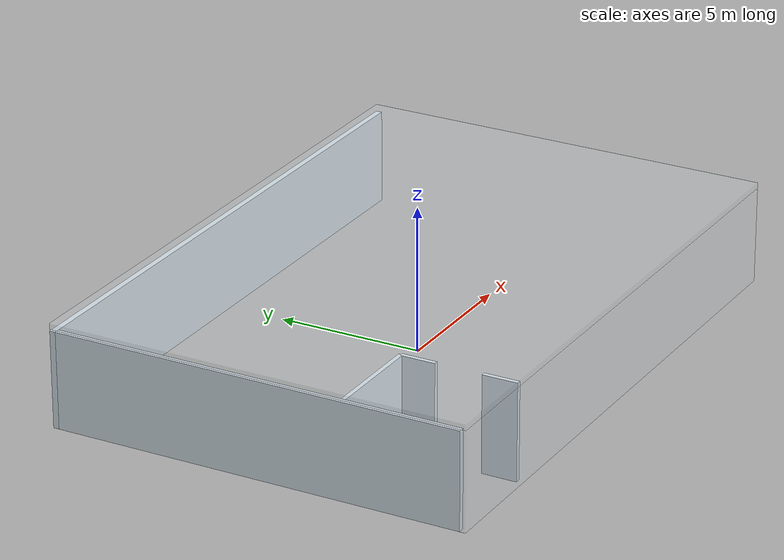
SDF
<sdf version="1.6">
 <world name="cleanroom">
  <model name="wall_north">
   <static>true</static>
   <link name="body">
    <collision name="body">
     <pose>0 7.1 1.65 0 0 0</pose>
     <geometry><box><size>20.4 0.2 3.3</size></box></geometry>
    </collision>
    <visual name="body">
     <pose>0 7.1 1.65 0 0 0</pose>
     <geometry><box><size>20.4 0.2 3.3</size></box></geometry>
     <material><ambient>0.85 0.9 0.93 1</ambient><diffuse>0.85 0.9 0.93 1</diffuse></material>
     <cast_shadows>false</cast_shadows>
    </visual>
   </link>
  </model>
  <model name="wall_south">
   <static>true</static>
   <link name="body">
    <collision name="body">
     <pose>0 -7.1 1.65 0 0 0</pose>
     <geometry><box><size>20.4 0.2 3.3</size></box></geometry>
    </collision>
    <visual name="body">
     <pose>0 -7.1 1.65 0 0 0</pose>
     <geometry><box><size>20.4 0.2 3.3</size></box></geometry>
     <material><ambient>0.85 0.9 0.93 1</ambient><diffuse>0.85 0.9 0.93 1</diffuse></material>
     <transparency>0.88</transparency>
     <cast_shadows>false</cast_shadows>
    </visual>
   </link>
  </model>
  <model name="wall_east">
   <static>true</static>
   <link name="body">
    <collision name="body">
     <pose>10.1 0 1.65 0 0 0</pose>
     <geometry><box><size>0.2 14 3.3</size></box></geometry>
    </collision>
    <visual name="body">
     <pose>10.1 0 1.65 0 0 0</pose>
     <geometry><box><size>0.2 14 3.3</size></box></geometry>
     <material><ambient>0.85 0.9 0.93 1</ambient><diffuse>0.85 0.9 0.93 1</diffuse></material>
     <transparency>0.88</transparency>
     <cast_shadows>false</cast_shadows>
    </visual>
   </link>
  </model>
  <model name="wall_west">
   <static>true</static>
   <link name="body">
    <collision name="body">
     <pose>-10.1 0 1.65 0 0 0</pose>
     <geometry><box><size>0.2 14 3.3</size></box></geometry>
    </collision>
    <visual name="body">
     <pose>-10.1 0 1.65 0 0 0</pose>
     <geometry><box><size>0.2 14 3.3</size></box></geometry>
     <material><ambient>0.85 0.9 0.93 1</ambient><diffuse>0.85 0.9 0.93 1</diffuse></material>
     <cast_shadows>false</cast_shadows>
    </visual>
   </link>
  </model>
  <model name="airlock_north">
   <static>true</static>
   <link name="body">
    <collision name="body">
     <pose>-8.25 -3 1.65 0 0 0</pose>
     <geometry><box><size>3.5 0.15 3.3</size></box></geometry>
    </collision>
    <visual name="body">
     <pose>-8.25 -3 1.65 0 0 0</pose>
     <geometry><box><size>3.5 0.15 3.3</size></box></geometry>
     <material><ambient>0.85 0.9 0.93 1</ambient><diffuse>0.85 0.9 0.93 1</diffuse></material>
     <cast_shadows>false</cast_shadows>
    </visual>
   </link>
  </model>
  <model name="airlock_door_south">
   <static>true</static>
   <link name="body">
    <collision name="body">
     <pose>-6.5 -6.4 1.65 0 0 0</pose>
     <geometry><box><size>0.15 1.2 3.3</size></box></geometry>
    </collision>
    <visual name="body">
     <pose>-6.5 -6.4 1.65 0 0 0</pose>
     <geometry><box><size>0.15 1.2 3.3</size></box></geometry>
     <material><ambient>0.85 0.9 0.93 1</ambient><diffuse>0.85 0.9 0.93 1</diffuse></material>
     <cast_shadows>false</cast_shadows>
    </visual>
   </link>
  </model>
  <model name="airlock_door_north">
   <static>true</static>
   <link name="body">
    <collision name="body">
     <pose>-6.5 -3.6 1.65 0 0 0</pose>
     <geometry><box><size>0.15 1.2 3.3</size></box></geometry>
    </collision>
    <visual name="body">
     <pose>-6.5 -3.6 1.65 0 0 0</pose>
     <geometry><box><size>0.15 1.2 3.3</size></box></geometry>
     <material><ambient>0.85 0.9 0.93 1</ambient><diffuse>0.85 0.9 0.93 1</diffuse></material>
     <cast_shadows>false</cast_shadows>
    </visual>
   </link>
  </model>
  <model name="ceiling_ffu_array">
   <static>true</static>
   <link name="body">
    <collision name="ceiling">
     <pose>0 0 3.45 0 0 0</pose>
     <geometry><box><size>20.4 14.4 0.2</size></box></geometry>
    </collision>
    <visual name="ceiling">
     <pose>0 0 3.45 0 0 0</pose>
     <geometry><box><size>20.4 14.4 0.2</size></box></geometry>
     <material><ambient>0.85 0.9 0.93 1</ambient><diffuse>0.85 0.9 0.93 1</diffuse></material>
     <transparency>0.98</transparency>
     <cast_shadows>false</cast_shadows>
    </visual>
    <visual name="ffu_frame_0_0">
     <pose>-9 -6 3.28 0 0 0</pose>
     <geometry><box><size>1.82 1.82 0.12</size></box></geometry>
     <material><ambient>0.57 0.66 0.7 1</ambient><diffuse>0.57 0.66 0.7 1</diffuse></material>
     <transparency>0.95</transparency>
     <cast_shadows>false</cast_shadows>
    </visual>
    <visual name="hepa_0_0">
     <pose>-9 -6 3.21 0 0 0</pose>
     <geometry><box><size>1.65 1.65 0.02</size></box></geometry>
     <material><ambient>0.85 0.9 0.93 1</ambient><diffuse>0.85 0.9 0.93 1</diffuse></material>
     <transparency>0.95</transparency>
     <cast_shadows>false</cast_shadows>
    </visual>
    <visual name="ffu_frame_0_1">
     <pose>-9 -4 3.28 0 0 0</pose>
     <geometry><box><size>1.82 1.82 0.12</size></box></geometry>
     <material><ambient>0.57 0.66 0.7 1</ambient><diffuse>0.57 0.66 0.7 1</diffuse></material>
     <transparency>0.95</transparency>
     <cast_shadows>false</cast_shadows>
    </visual>
    <visual name="hepa_0_1">
     <pose>-9 -4 3.21 0 0 0</pose>
     <geometry><box><size>1.65 1.65 0.02</size></box></geometry>
     <material><ambient>0.85 0.9 0.93 1</ambient><diffuse>0.85 0.9 0.93 1</diffuse></material>
     <transparency>0.95</transparency>
     <cast_shadows>false</cast_shadows>
    </visual>
    <visual name="ffu_frame_0_2">
     <pose>-9 -2 3.28 0 0 0</pose>
     <geometry><box><size>1.82 1.82 0.12</size></box></geometry>
     <material><ambient>0.57 0.66 0.7 1</ambient><diffuse>0.57 0.66 0.7 1</diffuse></material>
     <transparency>0.95</transparency>
     <cast_shadows>false</cast_shadows>
    </visual>
    <visual name="hepa_0_2">
     <pose>-9 -2 3.21 0 0 0</pose>
     <geometry><box><size>1.65 1.65 0.02</size></box></geometry>
     <material><ambient>0.85 0.9 0.93 1</ambient><diffuse>0.85 0.9 0.93 1</diffuse></material>
     <transparency>0.95</transparency>
     <cast_shadows>false</cast_shadows>
    </visual>
    <visual name="ffu_frame_0_3">
     <pose>-9 0 3.28 0 0 0</pose>
     <geometry><box><size>1.82 1.82 0.12</size></box></geometry>
     <material><ambient>0.57 0.66 0.7 1</ambient><diffuse>0.57 0.66 0.7 1</diffuse></material>
     <transparency>0.95</transparency>
     <cast_shadows>false</cast_shadows>
    </visual>
    <visual name="hepa_0_3">
     <pose>-9 0 3.21 0 0 0</pose>
     <geometry><box><size>1.65 1.65 0.02</size></box></geometry>
     <material><ambient>0.85 0.9 0.93 1</ambient><diffuse>0.85 0.9 0.93 1</diffuse></material>
     <transparency>0.95</transparency>
     <cast_shadows>false</cast_shadows>
    </visual>
    <visual name="ffu_frame_0_4">
     <pose>-9 2 3.28 0 0 0</pose>
     <geometry><box><size>1.82 1.82 0.12</size></box></geometry>
     <material><ambient>0.57 0.66 0.7 1</ambient><diffuse>0.57 0.66 0.7 1</diffuse></material>
     <transparency>0.95</transparency>
     <cast_shadows>false</cast_shadows>
    </visual>
    <visual name="hepa_0_4">
     <pose>-9 2 3.21 0 0 0</pose>
     <geometry><box><size>1.65 1.65 0.02</size></box></geometry>
     <material><ambient>0.85 0.9 0.93 1</ambient><diffuse>0.85 0.9 0.93 1</diffuse></material>
     <transparency>0.95</transparency>
     <cast_shadows>false</cast_shadows>
    </visual>
    <visual name="ffu_frame_0_5">
     <pose>-9 4 3.28 0 0 0</pose>
     <geometry><box><size>1.82 1.82 0.12</size></box></geometry>
     <material><ambient>0.57 0.66 0.7 1</ambient><diffuse>0.57 0.66 0.7 1</diffuse></material>
     <transparency>0.95</transparency>
     <cast_shadows>false</cast_shadows>
    </visual>
    <visual name="hepa_0_5">
     <pose>-9 4 3.21 0 0 0</pose>
     <geometry><box><size>1.65 1.65 0.02</size></box></geometry>
     <material><ambient>0.85 0.9 0.93 1</ambient><diffuse>0.85 0.9 0.93 1</diffuse></material>
     <transparency>0.95</transparency>
     <cast_shadows>false</cast_shadows>
    </visual>
    <visual name="ffu_frame_0_6">
     <pose>-9 6 3.28 0 0 0</pose>
     <geometry><box><size>1.82 1.82 0.12</size></box></geometry>
     <material><ambient>0.57 0.66 0.7 1</ambient><diffuse>0.57 0.66 0.7 1</diffuse></material>
     <transparency>0.95</transparency>
     <cast_shadows>false</cast_shadows>
    </visual>
    <visual name="hepa_0_6">
     <pose>-9 6 3.21 0 0 0</pose>
     <geometry><box><size>1.65 1.65 0.02</size></box></geometry>
     <material><ambient>0.85 0.9 0.93 1</ambient><diffuse>0.85 0.9 0.93 1</diffuse></material>
     <transparency>0.95</transparency>
     <cast_shadows>false</cast_shadows>
    </visual>
    <visual name="ffu_frame_1_0">
     <pose>-7 -6 3.28 0 0 0</pose>
     <geometry><box><size>1.82 1.82 0.12</size></box></geometry>
     <material><ambient>0.57 0.66 0.7 1</ambient><diffuse>0.57 0.66 0.7 1</diffuse></material>
     <transparency>0.95</transparency>
     <cast_shadows>false</cast_shadows>
    </visual>
    <visual name="hepa_1_0">
     <pose>-7 -6 3.21 0 0 0</pose>
     <geometry><box><size>1.65 1.65 0.02</size></box></geometry>
     <material><ambient>0.85 0.9 0.93 1</ambient><diffuse>0.85 0.9 0.93 1</diffuse></material>
     <transparency>0.95</transparency>
     <cast_shadows>false</cast_shadows>
    </visual>
    <visual name="ffu_frame_1_1">
     <pose>-7 -4 3.28 0 0 0</pose>
     <geometry><box><size>1.82 1.82 0.12</size></box></geometry>
     <material><ambient>0.57 0.66 0.7 1</ambient><diffuse>0.57 0.66 0.7 1</diffuse></material>
     <transparency>0.95</transparency>
     <cast_shadows>false</cast_shadows>
    </visual>
    <visual name="hepa_1_1">
     <pose>-7 -4 3.21 0 0 0</pose>
     <geometry><box><size>1.65 1.65 0.02</size></box></geometry>
     <material><ambient>0.85 0.9 0.93 1</ambient><diffuse>0.85 0.9 0.93 1</diffuse></material>
     <transparency>0.95</transparency>
     <cast_shadows>false</cast_shadows>
    </visual>
    <visual name="ffu_frame_1_2">
     <pose>-7 -2 3.28 0 0 0</pose>
     <geometry><box><size>1.82 1.82 0.12</size></box></geometry>
     <material><ambient>0.57 0.66 0.7 1</ambient><diffuse>0.57 0.66 0.7 1</diffuse></material>
     <transparency>0.95</transparency>
     <cast_shadows>false</cast_shadows>
    </visual>
    <visual name="hepa_1_2">
     <pose>-7 -2 3.21 0 0 0</pose>
     <geometry><box><size>1.65 1.65 0.02</size></box></geometry>
     <material><ambient>0.85 0.9 0.93 1</ambient><diffuse>0.85 0.9 0.93 1</diffuse></material>
     <transparency>0.95</transparency>
     <cast_shadows>false</cast_shadows>
    </visual>
    <visual name="ffu_frame_1_3">
     <pose>-7 0 3.28 0 0 0</pose>
     <geometry><box><size>1.82 1.82 0.12</size></box></geometry>
     <material><ambient>0.57 0.66 0.7 1</ambient><diffuse>0.57 0.66 0.7 1</diffuse></material>
     <transparency>0.95</transparency>
     <cast_shadows>false</cast_shadows>
    </visual>
    <visual name="hepa_1_3">
     <pose>-7 0 3.21 0 0 0</pose>
     <geometry><box><size>1.65 1.65 0.02</size></box></geometry>
     <material><ambient>0.85 0.9 0.93 1</ambient><diffuse>0.85 0.9 0.93 1</diffuse></material>
     <transparency>0.95</transparency>
     <cast_shadows>false</cast_shadows>
    </visual>
    <visual name="ffu_frame_1_4">
     <pose>-7 2 3.28 0 0 0</pose>
     <geometry><box><size>1.82 1.82 0.12</size></box></geometry>
     <material><ambient>0.57 0.66 0.7 1</ambient><diffuse>0.57 0.66 0.7 1</diffuse></material>
     <transparency>0.95</transparency>
     <cast_shadows>false</cast_shadows>
    </visual>
    <visual name="hepa_1_4">
     <pose>-7 2 3.21 0 0 0</pose>
     <geometry><box><size>1.65 1.65 0.02</size></box></geometry>
     <material><ambient>0.85 0.9 0.93 1</ambient><diffuse>0.85 0.9 0.93 1</diffuse></material>
     <transparency>0.95</transparency>
     <cast_shadows>false</cast_shadows>
    </visual>
    <visual name="ffu_frame_1_5">
     <pose>-7 4 3.28 0 0 0</pose>
     <geometry><box><size>1.82 1.82 0.12</size></box></geometry>
     <material><ambient>0.57 0.66 0.7 1</ambient><diffuse>0.57 0.66 0.7 1</diffuse></material>
     <transparency>0.95</transparency>
     <cast_shadows>false</cast_shadows>
    </visual>
    <visual name="hepa_1_5">
     <pose>-7 4 3.21 0 0 0</pose>
     <geometry><box><size>1.65 1.65 0.02</size></box></geometry>
     <material><ambient>0.85 0.9 0.93 1</ambient><diffuse>0.85 0.9 0.93 1</diffuse></material>
     <transparency>0.95</transparency>
     <cast_shadows>false</cast_shadows>
    </visual>
    <visual name="ffu_frame_1_6">
     <pose>-7 6 3.28 0 0 0</pose>
     <geometry><box><size>1.82 1.82 0.12</size></box></geometry>
     <material><ambient>0.57 0.66 0.7 1</ambient><diffuse>0.57 0.66 0.7 1</diffuse></material>
     <transparency>0.95</transparency>
     <cast_shadows>false</cast_shadows>
    </visual>
    <visual name="hepa_1_6">
     <pose>-7 6 3.21 0 0 0</pose>
     <geometry><box><size>1.65 1.65 0.02</size></box></geometry>
     <material><ambient>0.85 0.9 0.93 1</ambient><diffuse>0.85 0.9 0.93 1</diffuse></material>
     <transparency>0.95</transparency>
     <cast_shadows>false</cast_shadows>
    </visual>
    <visual name="ffu_frame_2_0">
     <pose>-5 -6 3.28 0 0 0</pose>
     <geometry><box><size>1.82 1.82 0.12</size></box></geometry>
     <material><ambient>0.57 0.66 0.7 1</ambient><diffuse>0.57 0.66 0.7 1</diffuse></material>
     <transparency>0.95</transparency>
     <cast_shadows>false</cast_shadows>
    </visual>
    <visual name="hepa_2_0">
     <pose>-5 -6 3.21 0 0 0</pose>
     <geometry><box><size>1.65 1.65 0.02</size></box></geometry>
     <material><ambient>0.85 0.9 0.93 1</ambient><diffuse>0.85 0.9 0.93 1</diffuse></material>
     <transparency>0.95</transparency>
     <cast_shadows>false</cast_shadows>
    </visual>
    <visual name="ffu_frame_2_1">
     <pose>-5 -4 3.28 0 0 0</pose>
     <geometry><box><size>1.82 1.82 0.12</size></box></geometry>
     <material><ambient>0.57 0.66 0.7 1</ambient><diffuse>0.57 0.66 0.7 1</diffuse></material>
     <transparency>0.95</transparency>
     <cast_shadows>false</cast_shadows>
    </visual>
    <visual name="hepa_2_1">
     <pose>-5 -4 3.21 0 0 0</pose>
     <geometry><box><size>1.65 1.65 0.02</size></box></geometry>
     <material><ambient>0.85 0.9 0.93 1</ambient><diffuse>0.85 0.9 0.93 1</diffuse></material>
     <transparency>0.95</transparency>
     <cast_shadows>false</cast_shadows>
    </visual>
    <visual name="ffu_frame_2_2">
     <pose>-5 -2 3.28 0 0 0</pose>
     <geometry><box><size>1.82 1.82 0.12</size></box></geometry>
     <material><ambient>0.57 0.66 0.7 1</ambient><diffuse>0.57 0.66 0.7 1</diffuse></material>
     <transparency>0.95</transparency>
     <cast_shadows>false</cast_shadows>
    </visual>
    <visual name="hepa_2_2">
     <pose>-5 -2 3.21 0 0 0</pose>
     <geometry><box><size>1.65 1.65 0.02</size></box></geometry>
     <material><ambient>0.85 0.9 0.93 1</ambient><diffuse>0.85 0.9 0.93 1</diffuse></material>
     <transparency>0.95</transparency>
     <cast_shadows>false</cast_shadows>
    </visual>
    <visual name="ffu_frame_2_3">
     <pose>-5 0 3.28 0 0 0</pose>
     <geometry><box><size>1.82 1.82 0.12</size></box></geometry>
     <material><ambient>0.57 0.66 0.7 1</ambient><diffuse>0.57 0.66 0.7 1</diffuse></material>
     <transparency>0.95</transparency>
     <cast_shadows>false</cast_shadows>
    </visual>
    <visual name="hepa_2_3">
     <pose>-5 0 3.21 0 0 0</pose>
     <geometry><box><size>1.65 1.65 0.02</size></box></geometry>
     <material><ambient>0.85 0.9 0.93 1</ambient><diffuse>0.85 0.9 0.93 1</diffuse></material>
     <transparency>0.95</transparency>
     <cast_shadows>false</cast_shadows>
    </visual>
    <visual name="ffu_frame_2_4">
     <pose>-5 2 3.28 0 0 0</pose>
     <geometry><box><size>1.82 1.82 0.12</size></box></geometry>
     <material><ambient>0.57 0.66 0.7 1</ambient><diffuse>0.57 0.66 0.7 1</diffuse></material>
     <transparency>0.95</transparency>
     <cast_shadows>false</cast_shadows>
    </visual>
    <visual name="hepa_2_4">
     <pose>-5 2 3.21 0 0 0</pose>
     <geometry><box><size>1.65 1.65 0.02</size></box></geometry>
     <material><ambient>0.85 0.9 0.93 1</ambient><diffuse>0.85 0.9 0.93 1</diffuse></material>
     <transparency>0.95</transparency>
     <cast_shadows>false</cast_shadows>
    </visual>
    <visual name="ffu_frame_2_5">
     <pose>-5 4 3.28 0 0 0</pose>
     <geometry><box><size>1.82 1.82 0.12</size></box></geometry>
     <material><ambient>0.57 0.66 0.7 1</ambient><diffuse>0.57 0.66 0.7 1</diffuse></material>
     <transparency>0.95</transparency>
     <cast_shadows>false</cast_shadows>
    </visual>
    <visual name="hepa_2_5">
     <pose>-5 4 3.21 0 0 0</pose>
     <geometry><box><size>1.65 1.65 0.02</size></box></geometry>
     <material><ambient>0.85 0.9 0.93 1</ambient><diffuse>0.85 0.9 0.93 1</diffuse></material>
     <transparency>0.95</transparency>
     <cast_shadows>false</cast_shadows>
    </visual>
    <visual name="ffu_frame_2_6">
     <pose>-5 6 3.28 0 0 0</pose>
     <geometry><box><size>1.82 1.82 0.12</size></box></geometry>
     <material><ambient>0.57 0.66 0.7 1</ambient><diffuse>0.57 0.66 0.7 1</diffuse></material>
     <transparency>0.95</transparency>
     <cast_shadows>false</cast_shadows>
    </visual>
    <visual name="hepa_2_6">
     <pose>-5 6 3.21 0 0 0</pose>
     <geometry><box><size>1.65 1.65 0.02</size></box></geometry>
     <material><ambient>0.85 0.9 0.93 1</ambient><diffuse>0.85 0.9 0.93 1</diffuse></material>
     <transparency>0.95</transparency>
     <cast_shadows>false</cast_shadows>
    </visual>
    <visual name="ffu_frame_3_0">
     <pose>-3 -6 3.28 0 0 0</pose>
     <geometry><box><size>1.82 1.82 0.12</size></box></geometry>
     <material><ambient>0.57 0.66 0.7 1</ambient><diffuse>0.57 0.66 0.7 1</diffuse></material>
     <transparency>0.95</transparency>
     <cast_shadows>false</cast_shadows>
    </visual>
    <visual name="hepa_3_0">
     <pose>-3 -6 3.21 0 0 0</pose>
     <geometry><box><size>1.65 1.65 0.02</size></box></geometry>
     <material><ambient>0.85 0.9 0.93 1</ambient><diffuse>0.85 0.9 0.93 1</diffuse></material>
     <transparency>0.95</transparency>
     <cast_shadows>false</cast_shadows>
    </visual>
    <visual name="ffu_frame_3_1">
     <pose>-3 -4 3.28 0 0 0</pose>
     <geometry><box><size>1.82 1.82 0.12</size></box></geometry>
     <material><ambient>0.57 0.66 0.7 1</ambient><diffuse>0.57 0.66 0.7 1</diffuse></material>
     <transparency>0.95</transparency>
     <cast_shadows>false</cast_shadows>
    </visual>
    <visual name="hepa_3_1">
     <pose>-3 -4 3.21 0 0 0</pose>
     <geometry><box><size>1.65 1.65 0.02</size></box></geometry>
     <material><ambient>0.85 0.9 0.93 1</ambient><diffuse>0.85 0.9 0.93 1</diffuse></material>
     <transparency>0.95</transparency>
     <cast_shadows>false</cast_shadows>
    </visual>
    <visual name="ffu_frame_3_2">
     <pose>-3 -2 3.28 0 0 0</pose>
     <geometry><box><size>1.82 1.82 0.12</size></box></geometry>
     <material><ambient>0.57 0.66 0.7 1</ambient><diffuse>0.57 0.66 0.7 1</diffuse></material>
     <transparency>0.95</transparency>
     <cast_shadows>false</cast_shadows>
    </visual>
    <visual name="hepa_3_2">
     <pose>-3 -2 3.21 0 0 0</pose>
     <geometry><box><size>1.65 1.65 0.02</size></box></geometry>
     <material><ambient>0.85 0.9 0.93 1</ambient><diffuse>0.85 0.9 0.93 1</diffuse></material>
     <transparency>0.95</transparency>
     <cast_shadows>false</cast_shadows>
    </visual>
    <visual name="ffu_frame_3_3">
     <pose>-3 0 3.28 0 0 0</pose>
     <geometry><box><size>1.82 1.82 0.12</size></box></geometry>
     <material><ambient>0.57 0.66 0.7 1</ambient><diffuse>0.57 0.66 0.7 1</diffuse></material>
     <transparency>0.95</transparency>
     <cast_shadows>false</cast_shadows>
    </visual>
    <visual name="hepa_3_3">
     <pose>-3 0 3.21 0 0 0</pose>
     <geometry><box><size>1.65 1.65 0.02</size></box></geometry>
     <material><ambient>0.85 0.9 0.93 1</ambient><diffuse>0.85 0.9 0.93 1</diffuse></material>
     <transparency>0.95</transparency>
     <cast_shadows>false</cast_shadows>
    </visual>
    <visual name="ffu_frame_3_4">
     <pose>-3 2 3.28 0 0 0</pose>
     <geometry><box><size>1.82 1.82 0.12</size></box></geometry>
     <material><ambient>0.57 0.66 0.7 1</ambient><diffuse>0.57 0.66 0.7 1</diffuse></material>
     <transparency>0.95</transparency>
     <cast_shadows>false</cast_shadows>
    </visual>
    <visual name="hepa_3_4">
     <pose>-3 2 3.21 0 0 0</pose>
     <geometry><box><size>1.65 1.65 0.02</size></box></geometry>
     <material><ambient>0.85 0.9 0.93 1</ambient><diffuse>0.85 0.9 0.93 1</diffuse></material>
     <transparency>0.95</transparency>
     <cast_shadows>false</cast_shadows>
    </visual>
    <visual name="ffu_frame_3_5">
     <pose>-3 4 3.28 0 0 0</pose>
     <geometry><box><size>1.82 1.82 0.12</size></box></geometry>
     <material><ambient>0.57 0.66 0.7 1</ambient><diffuse>0.57 0.66 0.7 1</diffuse></material>
     <transparency>0.95</transparency>
     <cast_shadows>false</cast_shadows>
    </visual>
    <visual name="hepa_3_5">
     <pose>-3 4 3.21 0 0 0</pose>
     <geometry><box><size>1.65 1.65 0.02</size></box></geometry>
     <material><ambient>0.85 0.9 0.93 1</ambient><diffuse>0.85 0.9 0.93 1</diffuse></material>
     <transparency>0.95</transparency>
     <cast_shadows>false</cast_shadows>
    </visual>
    <visual name="ffu_frame_3_6">
     <pose>-3 6 3.28 0 0 0</pose>
     <geometry><box><size>1.82 1.82 0.12</size></box></geometry>
     <material><ambient>0.57 0.66 0.7 1</ambient><diffuse>0.57 0.66 0.7 1</diffuse></material>
     <transparency>0.95</transparency>
     <cast_shadows>false</cast_shadows>
    </visual>
    <visual name="hepa_3_6">
     <pose>-3 6 3.21 0 0 0</pose>
     <geometry><box><size>1.65 1.65 0.02</size></box></geometry>
     <material><ambient>0.85 0.9 0.93 1</ambient><diffuse>0.85 0.9 0.93 1</diffuse></material>
     <transparency>0.95</transparency>
     <cast_shadows>false</cast_shadows>
    </visual>
    <visual name="ffu_frame_4_0">
     <pose>-1 -6 3.28 0 0 0</pose>
     <geometry><box><size>1.82 1.82 0.12</size></box></geometry>
     <material><ambient>0.57 0.66 0.7 1</ambient><diffuse>0.57 0.66 0.7 1</diffuse></material>
     <transparency>0.95</transparency>
     <cast_shadows>false</cast_shadows>
    </visual>
    <visual name="hepa_4_0">
     <pose>-1 -6 3.21 0 0 0</pose>
     <geometry><box><size>1.65 1.65 0.02</size></box></geometry>
     <material><ambient>0.85 0.9 0.93 1</ambient><diffuse>0.85 0.9 0.93 1</diffuse></material>
     <transparency>0.95</transparency>
     <cast_shadows>false</cast_shadows>
    </visual>
    <visual name="ffu_frame_4_1">
     <pose>-1 -4 3.28 0 0 0</pose>
     <geometry><box><size>1.82 1.82 0.12</size></box></geometry>
     <material><ambient>0.57 0.66 0.7 1</ambient><diffuse>0.57 0.66 0.7 1</diffuse></material>
     <transparency>0.95</transparency>
     <cast_shadows>false</cast_shadows>
    </visual>
    <visual name="hepa_4_1">
     <pose>-1 -4 3.21 0 0 0</pose>
     <geometry><box><size>1.65 1.65 0.02</size></box></geometry>
     <material><ambient>0.85 0.9 0.93 1</ambient><diffuse>0.85 0.9 0.93 1</diffuse></material>
     <transparency>0.95</transparency>
     <cast_shadows>false</cast_shadows>
    </visual>
    <visual name="ffu_frame_4_2">
     <pose>-1 -2 3.28 0 0 0</pose>
     <geometry><box><size>1.82 1.82 0.12</size></box></geometry>
     <material><ambient>0.57 0.66 0.7 1</ambient><diffuse>0.57 0.66 0.7 1</diffuse></material>
     <transparency>0.95</transparency>
     <cast_shadows>false</cast_shadows>
    </visual>
    <visual name="hepa_4_2">
     <pose>-1 -2 3.21 0 0 0</pose>
     <geometry><box><size>1.65 1.65 0.02</size></box></geometry>
     <material><ambient>0.85 0.9 0.93 1</ambient><diffuse>0.85 0.9 0.93 1</diffuse></material>
     <transparency>0.95</transparency>
     <cast_shadows>false</cast_shadows>
    </visual>
    <visual name="ffu_frame_4_3">
     <pose>-1 0 3.28 0 0 0</pose>
     <geometry><box><size>1.82 1.82 0.12</size></box></geometry>
     <material><ambient>0.57 0.66 0.7 1</ambient><diffuse>0.57 0.66 0.7 1</diffuse></material>
     <transparency>0.95</transparency>
     <cast_shadows>false</cast_shadows>
    </visual>
    <visual name="hepa_4_3">
     <pose>-1 0 3.21 0 0 0</pose>
     <geometry><box><size>1.65 1.65 0.02</size></box></geometry>
     <material><ambient>0.85 0.9 0.93 1</ambient><diffuse>0.85 0.9 0.93 1</diffuse></material>
     <transparency>0.95</transparency>
     <cast_shadows>false</cast_shadows>
    </visual>
    <visual name="ffu_frame_4_4">
     <pose>-1 2 3.28 0 0 0</pose>
     <geometry><box><size>1.82 1.82 0.12</size></box></geometry>
     <material><ambient>0.57 0.66 0.7 1</ambient><diffuse>0.57 0.66 0.7 1</diffuse></material>
     <transparency>0.95</transparency>
     <cast_shadows>false</cast_shadows>
    </visual>
    <visual name="hepa_4_4">
     <pose>-1 2 3.21 0 0 0</pose>
     <geometry><box><size>1.65 1.65 0.02</size></box></geometry>
     <material><ambient>0.85 0.9 0.93 1</ambient><diffuse>0.85 0.9 0.93 1</diffuse></material>
     <transparency>0.95</transparency>
     <cast_shadows>false</cast_shadows>
    </visual>
    <visual name="ffu_frame_4_5">
     <pose>-1 4 3.28 0 0 0</pose>
     <geometry><box><size>1.82 1.82 0.12</size></box></geometry>
     <material><ambient>0.57 0.66 0.7 1</ambient><diffuse>0.57 0.66 0.7 1</diffuse></material>
     <transparency>0.95</transparency>
     <cast_shadows>false</cast_shadows>
    </visual>
    <visual name="hepa_4_5">
     <pose>-1 4 3.21 0 0 0</pose>
     <geometry><box><size>1.65 1.65 0.02</size></box></geometry>
     <material><ambient>0.85 0.9 0.93 1</ambient><diffuse>0.85 0.9 0.93 1</diffuse></material>
     <transparency>0.95</transparency>
     <cast_shadows>false</cast_shadows>
    </visual>
    <visual name="ffu_frame_4_6">
     <pose>-1 6 3.28 0 0 0</pose>
     <geometry><box><size>1.82 1.82 0.12</size></box></geometry>
     <material><ambient>0.57 0.66 0.7 1</ambient><diffuse>0.57 0.66 0.7 1</diffuse></material>
     <transparency>0.95</transparency>
     <cast_shadows>false</cast_shadows>
    </visual>
    <visual name="hepa_4_6">
     <pose>-1 6 3.21 0 0 0</pose>
     <geometry><box><size>1.65 1.65 0.02</size></box></geometry>
     <material><ambient>0.85 0.9 0.93 1</ambient><diffuse>0.85 0.9 0.93 1</diffuse></material>
     <transparency>0.95</transparency>
     <cast_shadows>false</cast_shadows>
    </visual>
    <visual name="ffu_frame_5_0">
     <pose>1 -6 3.28 0 0 0</pose>
     <geometry><box><size>1.82 1.82 0.12</size></box></geometry>
     <material><ambient>0.57 0.66 0.7 1</ambient><diffuse>0.57 0.66 0.7 1</diffuse></material>
     <transparency>0.95</transparency>
     <cast_shadows>false</cast_shadows>
    </visual>
    <visual name="hepa_5_0">
     <pose>1 -6 3.21 0 0 0</pose>
     <geometry><box><size>1.65 1.65 0.02</size></box></geometry>
     <material><ambient>0.85 0.9 0.93 1</ambient><diffuse>0.85 0.9 0.93 1</diffuse></material>
     <transparency>0.95</transparency>
     <cast_shadows>false</cast_shadows>
    </visual>
    <visual name="ffu_frame_5_1">
     <pose>1 -4 3.28 0 0 0</pose>
     <geometry><box><size>1.82 1.82 0.12</size></box></geometry>
     <material><ambient>0.57 0.66 0.7 1</ambient><diffuse>0.57 0.66 0.7 1</diffuse></material>
     <transparency>0.95</transparency>
     <cast_shadows>false</cast_shadows>
    </visual>
    <visual name="hepa_5_1">
     <pose>1 -4 3.21 0 0 0</pose>
     <geometry><box><size>1.65 1.65 0.02</size></box></geometry>
     <material><ambient>0.85 0.9 0.93 1</ambient><diffuse>0.85 0.9 0.93 1</diffuse></material>
     <transparency>0.95</transparency>
     <cast_shadows>false</cast_shadows>
    </visual>
    <visual name="ffu_frame_5_2">
     <pose>1 -2 3.28 0 0 0</pose>
     <geometry><box><size>1.82 1.82 0.12</size></box></geometry>
     <material><ambient>0.57 0.66 0.7 1</ambient><diffuse>0.57 0.66 0.7 1</diffuse></material>
     <transparency>0.95</transparency>
     <cast_shadows>false</cast_shadows>
    </visual>
    <visual name="hepa_5_2">
     <pose>1 -2 3.21 0 0 0</pose>
     <geometry><box><size>1.65 1.65 0.02</size></box></geometry>
     <material><ambient>0.85 0.9 0.93 1</ambient><diffuse>0.85 0.9 0.93 1</diffuse></material>
     <transparency>0.95</transparency>
     <cast_shadows>false</cast_shadows>
    </visual>
    <visual name="ffu_frame_5_3">
     <pose>1 0 3.28 0 0 0</pose>
     <geometry><box><size>1.82 1.82 0.12</size></box></geometry>
     <material><ambient>0.57 0.66 0.7 1</ambient><diffuse>0.57 0.66 0.7 1</diffuse></material>
     <transparency>0.95</transparency>
     <cast_shadows>false</cast_shadows>
    </visual>
    <visual name="hepa_5_3">
     <pose>1 0 3.21 0 0 0</pose>
     <geometry><box><size>1.65 1.65 0.02</size></box></geometry>
     <material><ambient>0.85 0.9 0.93 1</ambient><diffuse>0.85 0.9 0.93 1</diffuse></material>
     <transparency>0.95</transparency>
     <cast_shadows>false</cast_shadows>
    </visual>
    <visual name="ffu_frame_5_4">
     <pose>1 2 3.28 0 0 0</pose>
     <geometry><box><size>1.82 1.82 0.12</size></box></geometry>
     <material><ambient>0.57 0.66 0.7 1</ambient><diffuse>0.57 0.66 0.7 1</diffuse></material>
     <transparency>0.95</transparency>
     <cast_shadows>false</cast_shadows>
    </visual>
    <visual name="hepa_5_4">
     <pose>1 2 3.21 0 0 0</pose>
     <geometry><box><size>1.65 1.65 0.02</size></box></geometry>
     <material><ambient>0.85 0.9 0.93 1</ambient><diffuse>0.85 0.9 0.93 1</diffuse></material>
     <transparency>0.95</transparency>
     <cast_shadows>false</cast_shadows>
    </visual>
    <visual name="ffu_frame_5_5">
     <pose>1 4 3.28 0 0 0</pose>
     <geometry><box><size>1.82 1.82 0.12</size></box></geometry>
     <material><ambient>0.57 0.66 0.7 1</ambient><diffuse>0.57 0.66 0.7 1</diffuse></material>
     <transparency>0.95</transparency>
     <cast_shadows>false</cast_shadows>
    </visual>
    <visual name="hepa_5_5">
     <pose>1 4 3.21 0 0 0</pose>
     <geometry><box><size>1.65 1.65 0.02</size></box></geometry>
     <material><ambient>0.85 0.9 0.93 1</ambient><diffuse>0.85 0.9 0.93 1</diffuse></material>
     <transparency>0.95</transparency>
     <cast_shadows>false</cast_shadows>
    </visual>
    <visual name="ffu_frame_5_6">
     <pose>1 6 3.28 0 0 0</pose>
     <geometry><box><size>1.82 1.82 0.12</size></box></geometry>
     <material><ambient>0.57 0.66 0.7 1</ambient><diffuse>0.57 0.66 0.7 1</diffuse></material>
     <transparency>0.95</transparency>
     <cast_shadows>false</cast_shadows>
    </visual>
    <visual name="hepa_5_6">
     <pose>1 6 3.21 0 0 0</pose>
     <geometry><box><size>1.65 1.65 0.02</size></box></geometry>
     <material><ambient>0.85 0.9 0.93 1</ambient><diffuse>0.85 0.9 0.93 1</diffuse></material>
     <transparency>0.95</transparency>
     <cast_shadows>false</cast_shadows>
    </visual>
    <visual name="ffu_frame_6_0">
     <pose>3 -6 3.28 0 0 0</pose>
     <geometry><box><size>1.82 1.82 0.12</size></box></geometry>
     <material><ambient>0.57 0.66 0.7 1</ambient><diffuse>0.57 0.66 0.7 1</diffuse></material>
     <transparency>0.95</transparency>
     <cast_shadows>false</cast_shadows>
    </visual>
    <visual name="hepa_6_0">
     <pose>3 -6 3.21 0 0 0</pose>
     <geometry><box><size>1.65 1.65 0.02</size></box></geometry>
     <material><ambient>0.85 0.9 0.93 1</ambient><diffuse>0.85 0.9 0.93 1</diffuse></material>
     <transparency>0.95</transparency>
     <cast_shadows>false</cast_shadows>
    </visual>
    <visual name="ffu_frame_6_1">
     <pose>3 -4 3.28 0 0 0</pose>
     <geometry><box><size>1.82 1.82 0.12</size></box></geometry>
     <material><ambient>0.57 0.66 0.7 1</ambient><diffuse>0.57 0.66 0.7 1</diffuse></material>
     <transparency>0.95</transparency>
     <cast_shadows>false</cast_shadows>
    </visual>
    <visual name="hepa_6_1">
     <pose>3 -4 3.21 0 0 0</pose>
     <geometry><box><size>1.65 1.65 0.02</size></box></geometry>
     <material><ambient>0.85 0.9 0.93 1</ambient><diffuse>0.85 0.9 0.93 1</diffuse></material>
     <transparency>0.95</transparency>
     <cast_shadows>false</cast_shadows>
    </visual>
    <visual name="ffu_frame_6_2">
     <pose>3 -2 3.28 0 0 0</pose>
     <geometry><box><size>1.82 1.82 0.12</size></box></geometry>
     <material><ambient>0.57 0.66 0.7 1</ambient><diffuse>0.57 0.66 0.7 1</diffuse></material>
     <transparency>0.95</transparency>
     <cast_shadows>false</cast_shadows>
    </visual>
    <visual name="hepa_6_2">
     <pose>3 -2 3.21 0 0 0</pose>
     <geometry><box><size>1.65 1.65 0.02</size></box></geometry>
     <material><ambient>0.85 0.9 0.93 1</ambient><diffuse>0.85 0.9 0.93 1</diffuse></material>
     <transparency>0.95</transparency>
     <cast_shadows>false</cast_shadows>
    </visual>
    <visual name="ffu_frame_6_3">
     <pose>3 0 3.28 0 0 0</pose>
     <geometry><box><size>1.82 1.82 0.12</size></box></geometry>
     <material><ambient>0.57 0.66 0.7 1</ambient><diffuse>0.57 0.66 0.7 1</diffuse></material>
     <transparency>0.95</transparency>
     <cast_shadows>false</cast_shadows>
    </visual>
    <visual name="hepa_6_3">
     <pose>3 0 3.21 0 0 0</pose>
     <geometry><box><size>1.65 1.65 0.02</size></box></geometry>
     <material><ambient>0.85 0.9 0.93 1</ambient><diffuse>0.85 0.9 0.93 1</diffuse></material>
     <transparency>0.95</transparency>
     <cast_shadows>false</cast_shadows>
    </visual>
    <visual name="ffu_frame_6_4">
     <pose>3 2 3.28 0 0 0</pose>
     <geometry><box><size>1.82 1.82 0.12</size></box></geometry>
     <material><ambient>0.57 0.66 0.7 1</ambient><diffuse>0.57 0.66 0.7 1</diffuse></material>
     <transparency>0.95</transparency>
     <cast_shadows>false</cast_shadows>
    </visual>
    <visual name="hepa_6_4">
     <pose>3 2 3.21 0 0 0</pose>
     <geometry><box><size>1.65 1.65 0.02</size></box></geometry>
     <material><ambient>0.85 0.9 0.93 1</ambient><diffuse>0.85 0.9 0.93 1</diffuse></material>
     <transparency>0.95</transparency>
     <cast_shadows>false</cast_shadows>
    </visual>
    <visual name="ffu_frame_6_5">
     <pose>3 4 3.28 0 0 0</pose>
     <geometry><box><size>1.82 1.82 0.12</size></box></geometry>
     <material><ambient>0.57 0.66 0.7 1</ambient><diffuse>0.57 0.66 0.7 1</diffuse></material>
     <transparency>0.95</transparency>
     <cast_shadows>false</cast_shadows>
    </visual>
    <visual name="hepa_6_5">
     <pose>3 4 3.21 0 0 0</pose>
     <geometry><box><size>1.65 1.65 0.02</size></box></geometry>
     <material><ambient>0.85 0.9 0.93 1</ambient><diffuse>0.85 0.9 0.93 1</diffuse></material>
     <transparency>0.95</transparency>
     <cast_shadows>false</cast_shadows>
    </visual>
    <visual name="ffu_frame_6_6">
     <pose>3 6 3.28 0 0 0</pose>
     <geometry><box><size>1.82 1.82 0.12</size></box></geometry>
     <material><ambient>0.57 0.66 0.7 1</ambient><diffuse>0.57 0.66 0.7 1</diffuse></material>
     <transparency>0.95</transparency>
     <cast_shadows>false</cast_shadows>
    </visual>
    <visual name="hepa_6_6">
     <pose>3 6 3.21 0 0 0</pose>
     <geometry><box><size>1.65 1.65 0.02</size></box></geometry>
     <material><ambient>0.85 0.9 0.93 1</ambient><diffuse>0.85 0.9 0.93 1</diffuse></material>
     <transparency>0.95</transparency>
     <cast_shadows>false</cast_shadows>
    </visual>
    <visual name="ffu_frame_7_0">
     <pose>5 -6 3.28 0 0 0</pose>
     <geometry><box><size>1.82 1.82 0.12</size></box></geometry>
     <material><ambient>0.57 0.66 0.7 1</ambient><diffuse>0.57 0.66 0.7 1</diffuse></material>
     <transparency>0.95</transparency>
     <cast_shadows>false</cast_shadows>
    </visual>
    <visual name="hepa_7_0">
     <pose>5 -6 3.21 0 0 0</pose>
     <geometry><box><size>1.65 1.65 0.02</size></box></geometry>
     <material><ambient>0.85 0.9 0.93 1</ambient><diffuse>0.85 0.9 0.93 1</diffuse></material>
     <transparency>0.95</transparency>
     <cast_shadows>false</cast_shadows>
    </visual>
    <visual name="ffu_frame_7_1">
     <pose>5 -4 3.28 0 0 0</pose>
     <geometry><box><size>1.82 1.82 0.12</size></box></geometry>
     <material><ambient>0.57 0.66 0.7 1</ambient><diffuse>0.57 0.66 0.7 1</diffuse></material>
     <transparency>0.95</transparency>
     <cast_shadows>false</cast_shadows>
    </visual>
    <visual name="hepa_7_1">
     <pose>5 -4 3.21 0 0 0</pose>
     <geometry><box><size>1.65 1.65 0.02</size></box></geometry>
     <material><ambient>0.85 0.9 0.93 1</ambient><diffuse>0.85 0.9 0.93 1</diffuse></material>
     <transparency>0.95</transparency>
     <cast_shadows>false</cast_shadows>
    </visual>
    <visual name="ffu_frame_7_2">
     <pose>5 -2 3.28 0 0 0</pose>
     <geometry><box><size>1.82 1.82 0.12</size></box></geometry>
     <material><ambient>0.57 0.66 0.7 1</ambient><diffuse>0.57 0.66 0.7 1</diffuse></material>
     <transparency>0.95</transparency>
     <cast_shadows>false</cast_shadows>
    </visual>
    <visual name="hepa_7_2">
     <pose>5 -2 3.21 0 0 0</pose>
     <geometry><box><size>1.65 1.65 0.02</size></box></geometry>
     <material><ambient>0.85 0.9 0.93 1</ambient><diffuse>0.85 0.9 0.93 1</diffuse></material>
     <transparency>0.95</transparency>
     <cast_shadows>false</cast_shadows>
    </visual>
    <visual name="ffu_frame_7_3">
     <pose>5 0 3.28 0 0 0</pose>
     <geometry><box><size>1.82 1.82 0.12</size></box></geometry>
     <material><ambient>0.57 0.66 0.7 1</ambient><diffuse>0.57 0.66 0.7 1</diffuse></material>
     <transparency>0.95</transparency>
     <cast_shadows>false</cast_shadows>
    </visual>
    <visual name="hepa_7_3">
     <pose>5 0 3.21 0 0 0</pose>
     <geometry><box><size>1.65 1.65 0.02</size></box></geometry>
     <material><ambient>0.85 0.9 0.93 1</ambient><diffuse>0.85 0.9 0.93 1</diffuse></material>
     <transparency>0.95</transparency>
     <cast_shadows>false</cast_shadows>
    </visual>
    <visual name="ffu_frame_7_4">
     <pose>5 2 3.28 0 0 0</pose>
     <geometry><box><size>1.82 1.82 0.12</size></box></geometry>
     <material><ambient>0.57 0.66 0.7 1</ambient><diffuse>0.57 0.66 0.7 1</diffuse></material>
     <transparency>0.95</transparency>
     <cast_shadows>false</cast_shadows>
    </visual>
    <visual name="hepa_7_4">
     <pose>5 2 3.21 0 0 0</pose>
     <geometry><box><size>1.65 1.65 0.02</size></box></geometry>
     <material><ambient>0.85 0.9 0.93 1</ambient><diffuse>0.85 0.9 0.93 1</diffuse></material>
     <transparency>0.95</transparency>
     <cast_shadows>false</cast_shadows>
    </visual>
    <visual name="ffu_frame_7_5">
     <pose>5 4 3.28 0 0 0</pose>
     <geometry><box><size>1.82 1.82 0.12</size></box></geometry>
     <material><ambient>0.57 0.66 0.7 1</ambient><diffuse>0.57 0.66 0.7 1</diffuse></material>
     <transparency>0.95</transparency>
     <cast_shadows>false</cast_shadows>
    </visual>
    <visual name="hepa_7_5">
     <pose>5 4 3.21 0 0 0</pose>
     <geometry><box><size>1.65 1.65 0.02</size></box></geometry>
     <material><ambient>0.85 0.9 0.93 1</ambient><diffuse>0.85 0.9 0.93 1</diffuse></material>
     <transparency>0.95</transparency>
     <cast_shadows>false</cast_shadows>
    </visual>
    <visual name="ffu_frame_7_6">
     <pose>5 6 3.28 0 0 0</pose>
     <geometry><box><size>1.82 1.82 0.12</size></box></geometry>
     <material><ambient>0.57 0.66 0.7 1</ambient><diffuse>0.57 0.66 0.7 1</diffuse></material>
     <transparency>0.95</transparency>
     <cast_shadows>false</cast_shadows>
    </visual>
    <visual name="hepa_7_6">
     <pose>5 6 3.21 0 0 0</pose>
     <geometry><box><size>1.65 1.65 0.02</size></box></geometry>
     <material><ambient>0.85 0.9 0.93 1</ambient><diffuse>0.85 0.9 0.93 1</diffuse></material>
     <transparency>0.95</transparency>
     <cast_shadows>false</cast_shadows>
    </visual>
    <visual name="ffu_frame_8_0">
     <pose>7 -6 3.28 0 0 0</pose>
     <geometry><box><size>1.82 1.82 0.12</size></box></geometry>
     <material><ambient>0.57 0.66 0.7 1</ambient><diffuse>0.57 0.66 0.7 1</diffuse></material>
     <transparency>0.95</transparency>
     <cast_shadows>false</cast_shadows>
    </visual>
    <visual name="hepa_8_0">
     <pose>7 -6 3.21 0 0 0</pose>
     <geometry><box><size>1.65 1.65 0.02</size></box></geometry>
     <material><ambient>0.85 0.9 0.93 1</ambient><diffuse>0.85 0.9 0.93 1</diffuse></material>
     <transparency>0.95</transparency>
     <cast_shadows>false</cast_shadows>
    </visual>
    <visual name="ffu_frame_8_1">
     <pose>7 -4 3.28 0 0 0</pose>
     <geometry><box><size>1.82 1.82 0.12</size></box></geometry>
     <material><ambient>0.57 0.66 0.7 1</ambient><diffuse>0.57 0.66 0.7 1</diffuse></material>
     <transparency>0.95</transparency>
     <cast_shadows>false</cast_shadows>
    </visual>
    <visual name="hepa_8_1">
     <pose>7 -4 3.21 0 0 0</pose>
     <geometry><box><size>1.65 1.65 0.02</size></box></geometry>
     <material><ambient>0.85 0.9 0.93 1</ambient><diffuse>0.85 0.9 0.93 1</diffuse></material>
     <transparency>0.95</transparency>
     <cast_shadows>false</cast_shadows>
    </visual>
    <visual name="ffu_frame_8_2">
     <pose>7 -2 3.28 0 0 0</pose>
     <geometry><box><size>1.82 1.82 0.12</size></box></geometry>
     <material><ambient>0.57 0.66 0.7 1</ambient><diffuse>0.57 0.66 0.7 1</diffuse></material>
     <transparency>0.95</transparency>
     <cast_shadows>false</cast_shadows>
    </visual>
    <visual name="hepa_8_2">
     <pose>7 -2 3.21 0 0 0</pose>
     <geometry><box><size>1.65 1.65 0.02</size></box></geometry>
     <material><ambient>0.85 0.9 0.93 1</ambient><diffuse>0.85 0.9 0.93 1</diffuse></material>
     <transparency>0.95</transparency>
     <cast_shadows>false</cast_shadows>
    </visual>
    <visual name="ffu_frame_8_3">
     <pose>7 0 3.28 0 0 0</pose>
     <geometry><box><size>1.82 1.82 0.12</size></box></geometry>
     <material><ambient>0.57 0.66 0.7 1</ambient><diffuse>0.57 0.66 0.7 1</diffuse></material>
     <transparency>0.95</transparency>
     <cast_shadows>false</cast_shadows>
    </visual>
    <visual name="hepa_8_3">
     <pose>7 0 3.21 0 0 0</pose>
     <geometry><box><size>1.65 1.65 0.02</size></box></geometry>
     <material><ambient>0.85 0.9 0.93 1</ambient><diffuse>0.85 0.9 0.93 1</diffuse></material>
     <transparency>0.95</transparency>
     <cast_shadows>false</cast_shadows>
    </visual>
    <visual name="ffu_frame_8_4">
     <pose>7 2 3.28 0 0 0</pose>
     <geometry><box><size>1.82 1.82 0.12</size></box></geometry>
     <material><ambient>0.57 0.66 0.7 1</ambient><diffuse>0.57 0.66 0.7 1</diffuse></material>
     <transparency>0.95</transparency>
     <cast_shadows>false</cast_shadows>
    </visual>
    <visual name="hepa_8_4">
     <pose>7 2 3.21 0 0 0</pose>
     <geometry><box><size>1.65 1.65 0.02</size></box></geometry>
     <material><ambient>0.85 0.9 0.93 1</ambient><diffuse>0.85 0.9 0.93 1</diffuse></material>
     <transparency>0.95</transparency>
     <cast_shadows>false</cast_shadows>
    </visual>
    <visual name="ffu_frame_8_5">
     <pose>7 4 3.28 0 0 0</pose>
     <geometry><box><size>1.82 1.82 0.12</size></box></geometry>
     <material><ambient>0.57 0.66 0.7 1</ambient><diffuse>0.57 0.66 0.7 1</diffuse></material>
     <transparency>0.95</transparency>
     <cast_shadows>false</cast_shadows>
    </visual>
    <visual name="hepa_8_5">
     <pose>7 4 3.21 0 0 0</pose>
     <geometry><box><size>1.65 1.65 0.02</size></box></geometry>
     <material><ambient>0.85 0.9 0.93 1</ambient><diffuse>0.85 0.9 0.93 1</diffuse></material>
     <transparency>0.95</transparency>
     <cast_shadows>false</cast_shadows>
    </visual>
    <visual name="ffu_frame_8_6">
     <pose>7 6 3.28 0 0 0</pose>
     <geometry><box><size>1.82 1.82 0.12</size></box></geometry>
     <material><ambient>0.57 0.66 0.7 1</ambient><diffuse>0.57 0.66 0.7 1</diffuse></material>
     <transparency>0.95</transparency>
     <cast_shadows>false</cast_shadows>
    </visual>
    <visual name="hepa_8_6">
     <pose>7 6 3.21 0 0 0</pose>
     <geometry><box><size>1.65 1.65 0.02</size></box></geometry>
     <material><ambient>0.85 0.9 0.93 1</ambient><diffuse>0.85 0.9 0.93 1</diffuse></material>
     <transparency>0.95</transparency>
     <cast_shadows>false</cast_shadows>
    </visual>
    <visual name="ffu_frame_9_0">
     <pose>9 -6 3.28 0 0 0</pose>
     <geometry><box><size>1.82 1.82 0.12</size></box></geometry>
     <material><ambient>0.57 0.66 0.7 1</ambient><diffuse>0.57 0.66 0.7 1</diffuse></material>
     <transparency>0.95</transparency>
     <cast_shadows>false</cast_shadows>
    </visual>
    <visual name="hepa_9_0">
     <pose>9 -6 3.21 0 0 0</pose>
     <geometry><box><size>1.65 1.65 0.02</size></box></geometry>
     <material><ambient>0.85 0.9 0.93 1</ambient><diffuse>0.85 0.9 0.93 1</diffuse></material>
     <transparency>0.95</transparency>
     <cast_shadows>false</cast_shadows>
    </visual>
    <visual name="ffu_frame_9_1">
     <pose>9 -4 3.28 0 0 0</pose>
     <geometry><box><size>1.82 1.82 0.12</size></box></geometry>
     <material><ambient>0.57 0.66 0.7 1</ambient><diffuse>0.57 0.66 0.7 1</diffuse></material>
     <transparency>0.95</transparency>
     <cast_shadows>false</cast_shadows>
    </visual>
    <visual name="hepa_9_1">
     <pose>9 -4 3.21 0 0 0</pose>
     <geometry><box><size>1.65 1.65 0.02</size></box></geometry>
     <material><ambient>0.85 0.9 0.93 1</ambient><diffuse>0.85 0.9 0.93 1</diffuse></material>
     <transparency>0.95</transparency>
     <cast_shadows>false</cast_shadows>
    </visual>
    <visual name="ffu_frame_9_2">
     <pose>9 -2 3.28 0 0 0</pose>
     <geometry><box><size>1.82 1.82 0.12</size></box></geometry>
     <material><ambient>0.57 0.66 0.7 1</ambient><diffuse>0.57 0.66 0.7 1</diffuse></material>
     <transparency>0.95</transparency>
     <cast_shadows>false</cast_shadows>
    </visual>
    <visual name="hepa_9_2">
     <pose>9 -2 3.21 0 0 0</pose>
     <geometry><box><size>1.65 1.65 0.02</size></box></geometry>
     <material><ambient>0.85 0.9 0.93 1</ambient><diffuse>0.85 0.9 0.93 1</diffuse></material>
     <transparency>0.95</transparency>
     <cast_shadows>false</cast_shadows>
    </visual>
    <visual name="ffu_frame_9_3">
     <pose>9 0 3.28 0 0 0</pose>
     <geometry><box><size>1.82 1.82 0.12</size></box></geometry>
     <material><ambient>0.57 0.66 0.7 1</ambient><diffuse>0.57 0.66 0.7 1</diffuse></material>
     <transparency>0.95</transparency>
     <cast_shadows>false</cast_shadows>
    </visual>
    <visual name="hepa_9_3">
     <pose>9 0 3.21 0 0 0</pose>
     <geometry><box><size>1.65 1.65 0.02</size></box></geometry>
     <material><ambient>0.85 0.9 0.93 1</ambient><diffuse>0.85 0.9 0.93 1</diffuse></material>
     <transparency>0.95</transparency>
     <cast_shadows>false</cast_shadows>
    </visual>
    <visual name="ffu_frame_9_4">
     <pose>9 2 3.28 0 0 0</pose>
     <geometry><box><size>1.82 1.82 0.12</size></box></geometry>
     <material><ambient>0.57 0.66 0.7 1</ambient><diffuse>0.57 0.66 0.7 1</diffuse></material>
     <transparency>0.95</transparency>
     <cast_shadows>false</cast_shadows>
    </visual>
    <visual name="hepa_9_4">
     <pose>9 2 3.21 0 0 0</pose>
     <geometry><box><size>1.65 1.65 0.02</size></box></geometry>
     <material><ambient>0.85 0.9 0.93 1</ambient><diffuse>0.85 0.9 0.93 1</diffuse></material>
     <transparency>0.95</transparency>
     <cast_shadows>false</cast_shadows>
    </visual>
    <visual name="ffu_frame_9_5">
     <pose>9 4 3.28 0 0 0</pose>
     <geometry><box><size>1.82 1.82 0.12</size></box></geometry>
     <material><ambient>0.57 0.66 0.7 1</ambient><diffuse>0.57 0.66 0.7 1</diffuse></material>
     <transparency>0.95</transparency>
     <cast_shadows>false</cast_shadows>
    </visual>
    <visual name="hepa_9_5">
     <pose>9 4 3.21 0 0 0</pose>
     <geometry><box><size>1.65 1.65 0.02</size></box></geometry>
     <material><ambient>0.85 0.9 0.93 1</ambient><diffuse>0.85 0.9 0.93 1</diffuse></material>
     <transparency>0.95</transparency>
     <cast_shadows>false</cast_shadows>
    </visual>
    <visual name="ffu_frame_9_6">
     <pose>9 6 3.28 0 0 0</pose>
     <geometry><box><size>1.82 1.82 0.12</size></box></geometry>
     <material><ambient>0.57 0.66 0.7 1</ambient><diffuse>0.57 0.66 0.7 1</diffuse></material>
     <transparency>0.95</transparency>
     <cast_shadows>false</cast_shadows>
    </visual>
    <visual name="hepa_9_6">
     <pose>9 6 3.21 0 0 0</pose>
     <geometry><box><size>1.65 1.65 0.02</size></box></geometry>
     <material><ambient>0.85 0.9 0.93 1</ambient><diffuse>0.85 0.9 0.93 1</diffuse></material>
     <transparency>0.95</transparency>
     <cast_shadows>false</cast_shadows>
    </visual>
   </link>
  </model>
 </world>
</sdf>
